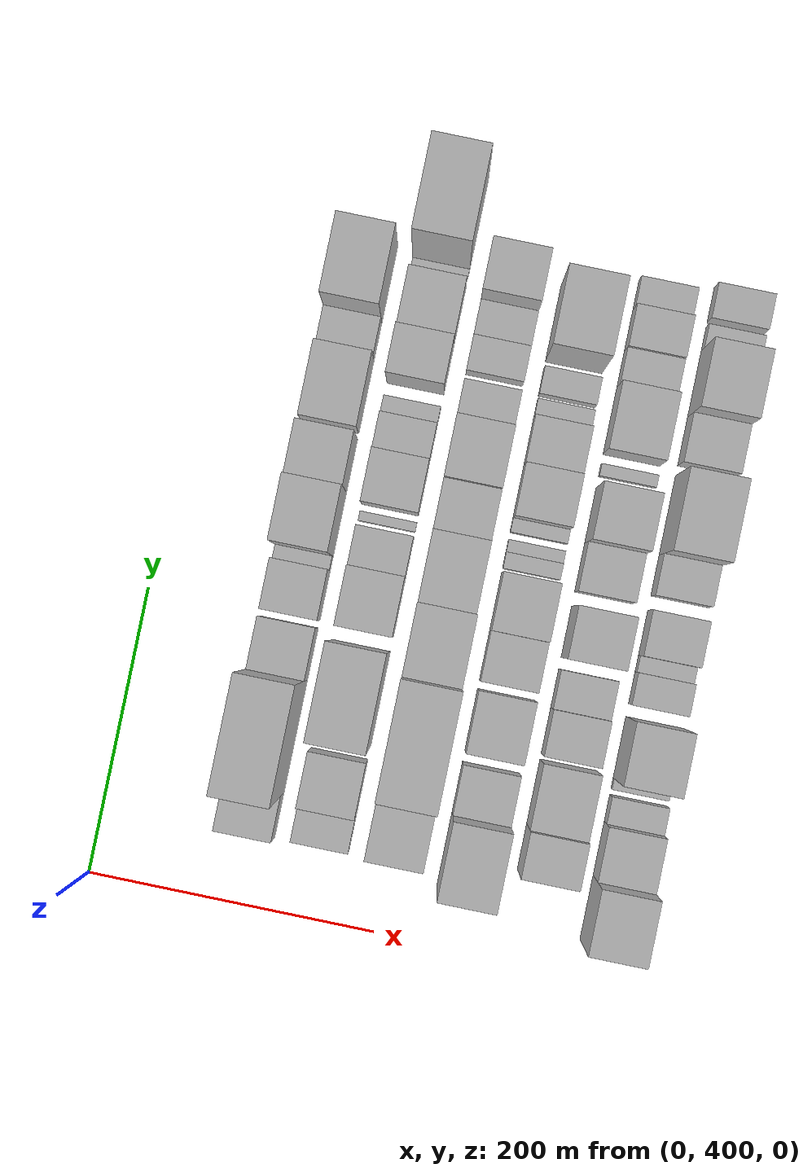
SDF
<sdf version="1.6">
 <world name="default">
  <model name="building_37">
   <static>1</static>
   <pose>100.0000 465.3264 0 0.000000 0.000000 0.000000</pose>
   <link name="link">
    <pose>0 0 30.00 0 0 0</pose>
    <collision name="collision"><geometry><box><size>40.0000 31.7944 60.0000</size></box></geometry></collision>
    <visual name="visual">
     <cast_shadows>0</cast_shadows>
     <geometry><box><size>40.0000 31.7944 60.0000</size></box></geometry>
     <material>
      <script>
       <uri>model://HANNAS_wall/materials/scripts</uri>
       <uri>model://HANNAS_wall/materials/textures</uri>
       <name>vrc/HANNAS_wall</name>
      </script>
     </material>
    </visual>
   </link>
  </model>
  <model name="building_38">
   <static>1</static>
   <pose>100.0000 520.8142 0 0.000000 0.000000 0.000000</pose>
   <link name="link">
    <pose>0 0 108.00 0 0 0</pose>
    <collision name="collision"><geometry><box><size>40.0000 79.1813 216.0000</size></box></geometry></collision>
    <visual name="visual">
     <cast_shadows>0</cast_shadows>
     <geometry><box><size>40.0000 79.1813 216.0000</size></box></geometry>
     <material>
      <script>
       <uri>model://HANNAS_wall/materials/scripts</uri>
       <uri>model://HANNAS_wall/materials/textures</uri>
       <name>vrc/HANNAS_wall</name>
      </script>
     </material>
    </visual>
   </link>
  </model>
  <model name="building_39">
   <static>1</static>
   <pose>100.0000 578.6875 0 0.000000 0.000000 0.000000</pose>
   <link name="link">
    <pose>0 0 33.00 0 0 0</pose>
    <collision name="collision"><geometry><box><size>40.0000 36.5652 66.0000</size></box></geometry></collision>
    <visual name="visual">
     <cast_shadows>0</cast_shadows>
     <geometry><box><size>40.0000 36.5652 66.0000</size></box></geometry>
     <material>
      <script>
       <uri>model://HANNAS_wall/materials/scripts</uri>
       <uri>model://HANNAS_wall/materials/textures</uri>
       <name>vrc/HANNAS_wall</name>
      </script>
     </material>
    </visual>
   </link>
  </model>
  <model name="building_40">
   <static>1</static>
   <pose>100.0000 619.5730 0 0.000000 0.000000 0.000000</pose>
   <link name="link">
    <pose>0 0 31.50 0 0 0</pose>
    <collision name="collision"><geometry><box><size>40.0000 35.2060 63.0000</size></box></geometry></collision>
    <visual name="visual">
     <cast_shadows>0</cast_shadows>
     <geometry><box><size>40.0000 35.2060 63.0000</size></box></geometry>
     <material>
      <script>
       <uri>model://HANNAS_wall/materials/scripts</uri>
       <uri>model://HANNAS_wall/materials/textures</uri>
       <name>vrc/HANNAS_wall</name>
      </script>
     </material>
    </visual>
   </link>
  </model>
  <model name="building_41">
   <static>1</static>
   <pose>100.0000 642.1893 0 0.000000 0.000000 0.000000</pose>
   <link name="link">
    <pose>0 0 12.00 0 0 0</pose>
    <collision name="collision"><geometry><box><size>40.0000 10.0265 24.0000</size></box></geometry></collision>
    <visual name="visual">
     <cast_shadows>0</cast_shadows>
     <geometry><box><size>40.0000 10.0265 24.0000</size></box></geometry>
     <material>
      <script>
       <uri>model://HANNAS_wall/materials/scripts</uri>
       <uri>model://HANNAS_wall/materials/textures</uri>
       <name>vrc/HANNAS_wall</name>
      </script>
     </material>
    </visual>
   </link>
  </model>
  <model name="building_42">
   <static>1</static>
   <pose>100.0000 669.8225 0 0.000000 0.000000 0.000000</pose>
   <link name="link">
    <pose>0 0 67.50 0 0 0</pose>
    <collision name="collision"><geometry><box><size>40.0000 45.2399 135.0000</size></box></geometry></collision>
    <visual name="visual">
     <cast_shadows>0</cast_shadows>
     <geometry><box><size>40.0000 45.2399 135.0000</size></box></geometry>
     <material>
      <script>
       <uri>model://HANNAS_wall/materials/scripts</uri>
       <uri>model://HANNAS_wall/materials/textures</uri>
       <name>vrc/HANNAS_wall</name>
      </script>
     </material>
    </visual>
   </link>
  </model>
  <model name="building_43">
   <static>1</static>
   <pose>100.0000 711.1191 0 0.000000 0.000000 0.000000</pose>
   <link name="link">
    <pose>0 0 57.00 0 0 0</pose>
    <collision name="collision"><geometry><box><size>40.0000 37.3533 114.0000</size></box></geometry></collision>
    <visual name="visual">
     <cast_shadows>0</cast_shadows>
     <geometry><box><size>40.0000 37.3533 114.0000</size></box></geometry>
     <material>
      <script>
       <uri>model://HANNAS_wall/materials/scripts</uri>
       <uri>model://HANNAS_wall/materials/textures</uri>
       <name>vrc/HANNAS_wall</name>
      </script>
     </material>
    </visual>
   </link>
  </model>
  <model name="building_44">
   <static>1</static>
   <pose>100.0000 759.7154 0 0.000000 0.000000 0.000000</pose>
   <link name="link">
    <pose>0 0 43.50 0 0 0</pose>
    <collision name="collision"><geometry><box><size>40.0000 51.8393 87.0000</size></box></geometry></collision>
    <visual name="visual">
     <cast_shadows>0</cast_shadows>
     <geometry><box><size>40.0000 51.8393 87.0000</size></box></geometry>
     <material>
      <script>
       <uri>model://HANNAS_wall/materials/scripts</uri>
       <uri>model://HANNAS_wall/materials/textures</uri>
       <name>vrc/HANNAS_wall</name>
      </script>
     </material>
    </visual>
   </link>
  </model>
  <model name="building_45">
   <static>1</static>
   <pose>100.0000 798.9057 0 0.000000 0.000000 0.000000</pose>
   <link name="link">
    <pose>0 0 24.00 0 0 0</pose>
    <collision name="collision"><geometry><box><size>40.0000 26.5413 48.0000</size></box></geometry></collision>
    <visual name="visual">
     <cast_shadows>0</cast_shadows>
     <geometry><box><size>40.0000 26.5413 48.0000</size></box></geometry>
     <material>
      <script>
       <uri>model://HANNAS_wall/materials/scripts</uri>
       <uri>model://HANNAS_wall/materials/textures</uri>
       <name>vrc/HANNAS_wall</name>
      </script>
     </material>
    </visual>
   </link>
  </model>
  <model name="building_46">
   <static>1</static>
   <pose>100.0000 839.1710 0 0.000000 0.000000 0.000000</pose>
   <link name="link">
    <pose>0 0 69.00 0 0 0</pose>
    <collision name="collision"><geometry><box><size>40.0000 53.9894 138.0000</size></box></geometry></collision>
    <visual name="visual">
     <cast_shadows>0</cast_shadows>
     <geometry><box><size>40.0000 53.9894 138.0000</size></box></geometry>
     <material>
      <script>
       <uri>model://HANNAS_wall/materials/scripts</uri>
       <uri>model://HANNAS_wall/materials/textures</uri>
       <name>vrc/HANNAS_wall</name>
      </script>
     </material>
    </visual>
   </link>
  </model>
  <model name="building_82">
   <static>1</static>
   <pose>152.0000 463.8334 0 0.000000 0.000000 0.000000</pose>
   <link name="link">
    <pose>0 0 21.00 0 0 0</pose>
    <collision name="collision"><geometry><box><size>40.0000 25.0306 42.0000</size></box></geometry></collision>
    <visual name="visual">
     <cast_shadows>0</cast_shadows>
     <geometry><box><size>40.0000 25.0306 42.0000</size></box></geometry>
     <material>
      <script>
       <uri>model://HANNAS_wall/materials/scripts</uri>
       <uri>model://HANNAS_wall/materials/textures</uri>
       <name>vrc/HANNAS_wall</name>
      </script>
     </material>
    </visual>
   </link>
  </model>
  <model name="building_83">
   <static>1</static>
   <pose>152.0000 495.8571 0 0.000000 0.000000 0.000000</pose>
   <link name="link">
    <pose>0 0 37.50 0 0 0</pose>
    <collision name="collision"><geometry><box><size>40.0000 39.0169 75.0000</size></box></geometry></collision>
    <visual name="visual">
     <cast_shadows>0</cast_shadows>
     <geometry><box><size>40.0000 39.0169 75.0000</size></box></geometry>
     <material>
      <script>
       <uri>model://HANNAS_wall/materials/scripts</uri>
       <uri>model://HANNAS_wall/materials/textures</uri>
       <name>vrc/HANNAS_wall</name>
      </script>
     </material>
    </visual>
   </link>
  </model>
  <model name="building_84">
   <static>1</static>
   <pose>152.0000 558.2734 0 0.000000 0.000000 0.000000</pose>
   <link name="link">
    <pose>0 0 99.00 0 0 0</pose>
    <collision name="collision"><geometry><box><size>40.0000 65.8157 198.0000</size></box></geometry></collision>
    <visual name="visual">
     <cast_shadows>0</cast_shadows>
     <geometry><box><size>40.0000 65.8157 198.0000</size></box></geometry>
     <material>
      <script>
       <uri>model://HANNAS_wall/materials/scripts</uri>
       <uri>model://HANNAS_wall/materials/textures</uri>
       <name>vrc/HANNAS_wall</name>
      </script>
     </material>
    </visual>
   </link>
  </model>
  <model name="building_85">
   <static>1</static>
   <pose>152.0000 622.0047 0 0.000000 0.000000 0.000000</pose>
   <link name="link">
    <pose>0 0 37.50 0 0 0</pose>
    <collision name="collision"><geometry><box><size>40.0000 41.6470 75.0000</size></box></geometry></collision>
    <visual name="visual">
     <cast_shadows>0</cast_shadows>
     <geometry><box><size>40.0000 41.6470 75.0000</size></box></geometry>
     <material>
      <script>
       <uri>model://HANNAS_wall/materials/scripts</uri>
       <uri>model://HANNAS_wall/materials/textures</uri>
       <name>vrc/HANNAS_wall</name>
      </script>
     </material>
    </visual>
   </link>
  </model>
  <model name="building_86">
   <static>1</static>
   <pose>152.0000 656.8370 0 0.000000 0.000000 0.000000</pose>
   <link name="link">
    <pose>0 0 27.00 0 0 0</pose>
    <collision name="collision"><geometry><box><size>40.0000 28.0175 54.0000</size></box></geometry></collision>
    <visual name="visual">
     <cast_shadows>0</cast_shadows>
     <geometry><box><size>40.0000 28.0175 54.0000</size></box></geometry>
     <material>
      <script>
       <uri>model://HANNAS_wall/materials/scripts</uri>
       <uri>model://HANNAS_wall/materials/textures</uri>
       <name>vrc/HANNAS_wall</name>
      </script>
     </material>
    </visual>
   </link>
  </model>
  <model name="building_87">
   <static>1</static>
   <pose>152.0000 678.2125 0 0.000000 0.000000 0.000000</pose>
   <link name="link">
    <pose>0 0 7.50 0 0 0</pose>
    <collision name="collision"><geometry><box><size>40.0000 6.7335 15.0000</size></box></geometry></collision>
    <visual name="visual">
     <cast_shadows>0</cast_shadows>
     <geometry><box><size>40.0000 6.7335 15.0000</size></box></geometry>
     <material>
      <script>
       <uri>model://HANNAS_wall/materials/scripts</uri>
       <uri>model://HANNAS_wall/materials/textures</uri>
       <name>vrc/HANNAS_wall</name>
      </script>
     </material>
    </visual>
   </link>
  </model>
  <model name="building_88">
   <static>1</static>
   <pose>152.0000 705.2136 0 0.000000 0.000000 0.000000</pose>
   <link name="link">
    <pose>0 0 33.00 0 0 0</pose>
    <collision name="collision"><geometry><box><size>40.0000 37.2688 66.0000</size></box></geometry></collision>
    <visual name="visual">
     <cast_shadows>0</cast_shadows>
     <geometry><box><size>40.0000 37.2688 66.0000</size></box></geometry>
     <material>
      <script>
       <uri>model://HANNAS_wall/materials/scripts</uri>
       <uri>model://HANNAS_wall/materials/textures</uri>
       <name>vrc/HANNAS_wall</name>
      </script>
     </material>
    </visual>
   </link>
  </model>
  <model name="building_89">
   <static>1</static>
   <pose>152.0000 736.6379 0 0.000000 0.000000 0.000000</pose>
   <link name="link">
    <pose>0 0 25.50 0 0 0</pose>
    <collision name="collision"><geometry><box><size>40.0000 25.5797 51.0000</size></box></geometry></collision>
    <visual name="visual">
     <cast_shadows>0</cast_shadows>
     <geometry><box><size>40.0000 25.5797 51.0000</size></box></geometry>
     <material>
      <script>
       <uri>model://HANNAS_wall/materials/scripts</uri>
       <uri>model://HANNAS_wall/materials/textures</uri>
       <name>vrc/HANNAS_wall</name>
      </script>
     </material>
    </visual>
   </link>
  </model>
  <model name="building_90">
   <static>1</static>
   <pose>152.0000 755.7838 0 0.000000 0.000000 0.000000</pose>
   <link name="link">
    <pose>0 0 13.50 0 0 0</pose>
    <collision name="collision"><geometry><box><size>40.0000 12.7121 27.0000</size></box></geometry></collision>
    <visual name="visual">
     <cast_shadows>0</cast_shadows>
     <geometry><box><size>40.0000 12.7121 27.0000</size></box></geometry>
     <material>
      <script>
       <uri>model://HANNAS_wall/materials/scripts</uri>
       <uri>model://HANNAS_wall/materials/textures</uri>
       <name>vrc/HANNAS_wall</name>
      </script>
     </material>
    </visual>
   </link>
  </model>
  <model name="building_91">
   <static>1</static>
   <pose>152.0000 789.0494 0 0.000000 0.000000 0.000000</pose>
   <link name="link">
    <pose>0 0 52.50 0 0 0</pose>
    <collision name="collision"><geometry><box><size>40.0000 33.8191 105.0000</size></box></geometry></collision>
    <visual name="visual">
     <cast_shadows>0</cast_shadows>
     <geometry><box><size>40.0000 33.8191 105.0000</size></box></geometry>
     <material>
      <script>
       <uri>model://HANNAS_wall/materials/scripts</uri>
       <uri>model://HANNAS_wall/materials/textures</uri>
       <name>vrc/HANNAS_wall</name>
      </script>
     </material>
    </visual>
   </link>
  </model>
  <model name="building_92">
   <static>1</static>
   <pose>152.0000 826.7381 0 0.000000 0.000000 0.000000</pose>
   <link name="link">
    <pose>0 0 40.50 0 0 0</pose>
    <collision name="collision"><geometry><box><size>40.0000 41.5583 81.0000</size></box></geometry></collision>
    <visual name="visual">
     <cast_shadows>0</cast_shadows>
     <geometry><box><size>40.0000 41.5583 81.0000</size></box></geometry>
     <material>
      <script>
       <uri>model://HANNAS_wall/materials/scripts</uri>
       <uri>model://HANNAS_wall/materials/textures</uri>
       <name>vrc/HANNAS_wall</name>
      </script>
     </material>
    </visual>
   </link>
  </model>
  <model name="building_93">
   <static>1</static>
   <pose>152.0000 856.5205 0 0.000000 0.000000 0.000000</pose>
   <link name="link">
    <pose>0 0 7.50 0 0 0</pose>
    <collision name="collision"><geometry><box><size>40.0000 6.0066 15.0000</size></box></geometry></collision>
    <visual name="visual">
     <cast_shadows>0</cast_shadows>
     <geometry><box><size>40.0000 6.0066 15.0000</size></box></geometry>
     <material>
      <script>
       <uri>model://HANNAS_wall/materials/scripts</uri>
       <uri>model://HANNAS_wall/materials/textures</uri>
       <name>vrc/HANNAS_wall</name>
      </script>
     </material>
    </visual>
   </link>
  </model>
  <model name="building_94">
   <static>1</static>
   <pose>152.0000 891.4719 0 0.000000 0.000000 0.000000</pose>
   <link name="link">
    <pose>0 0 91.50 0 0 0</pose>
    <collision name="collision"><geometry><box><size>40.0000 63.8961 183.0000</size></box></geometry></collision>
    <visual name="visual">
     <cast_shadows>0</cast_shadows>
     <geometry><box><size>40.0000 63.8961 183.0000</size></box></geometry>
     <material>
      <script>
       <uri>model://HANNAS_wall/materials/scripts</uri>
       <uri>model://HANNAS_wall/materials/textures</uri>
       <name>vrc/HANNAS_wall</name>
      </script>
     </material>
    </visual>
   </link>
  </model>
  <model name="building_136">
   <static>1</static>
   <pose>204.0000 473.1175 0 0.000000 0.000000 0.000000</pose>
   <link name="link">
    <pose>0 0 51.00 0 0 0</pose>
    <collision name="collision"><geometry><box><size>40.0000 40.0647 102.0000</size></box></geometry></collision>
    <visual name="visual">
     <cast_shadows>0</cast_shadows>
     <geometry><box><size>40.0000 40.0647 102.0000</size></box></geometry>
     <material>
      <script>
       <uri>model://HANNAS_wall/materials/scripts</uri>
       <uri>model://HANNAS_wall/materials/textures</uri>
       <name>vrc/HANNAS_wall</name>
      </script>
     </material>
    </visual>
   </link>
  </model>
  <model name="building_137">
   <static>1</static>
   <pose>204.0000 538.0201 0 0.000000 0.000000 0.000000</pose>
   <link name="link">
    <pose>0 0 111.00 0 0 0</pose>
    <collision name="collision"><geometry><box><size>40.0000 79.7405 222.0000</size></box></geometry></collision>
    <visual name="visual">
     <cast_shadows>0</cast_shadows>
     <geometry><box><size>40.0000 79.7405 222.0000</size></box></geometry>
     <material>
      <script>
       <uri>model://HANNAS_wall/materials/scripts</uri>
       <uri>model://HANNAS_wall/materials/textures</uri>
       <name>vrc/HANNAS_wall</name>
      </script>
     </material>
    </visual>
   </link>
  </model>
  <model name="building_138">
   <static>1</static>
   <pose>204.0000 602.6849 0 0.000000 0.000000 0.000000</pose>
   <link name="link">
    <pose>0 0 75.00 0 0 0</pose>
    <collision name="collision"><geometry><box><size>40.0000 49.5892 150.0000</size></box></geometry></collision>
    <visual name="visual">
     <cast_shadows>0</cast_shadows>
     <geometry><box><size>40.0000 49.5892 150.0000</size></box></geometry>
     <material>
      <script>
       <uri>model://HANNAS_wall/materials/scripts</uri>
       <uri>model://HANNAS_wall/materials/textures</uri>
       <name>vrc/HANNAS_wall</name>
      </script>
     </material>
    </visual>
   </link>
  </model>
  <model name="building_139">
   <static>1</static>
   <pose>204.0000 652.6378 0 0.000000 0.000000 0.000000</pose>
   <link name="link">
    <pose>0 0 45.00 0 0 0</pose>
    <collision name="collision"><geometry><box><size>40.0000 50.3165 90.0000</size></box></geometry></collision>
    <visual name="visual">
     <cast_shadows>0</cast_shadows>
     <geometry><box><size>40.0000 50.3165 90.0000</size></box></geometry>
     <material>
      <script>
       <uri>model://HANNAS_wall/materials/scripts</uri>
       <uri>model://HANNAS_wall/materials/textures</uri>
       <name>vrc/HANNAS_wall</name>
      </script>
     </material>
    </visual>
   </link>
  </model>
  <model name="building_140">
   <static>1</static>
   <pose>204.0000 695.7059 0 0.000000 0.000000 0.000000</pose>
   <link name="link">
    <pose>0 0 34.50 0 0 0</pose>
    <collision name="collision"><geometry><box><size>40.0000 35.8197 69.0000</size></box></geometry></collision>
    <visual name="visual">
     <cast_shadows>0</cast_shadows>
     <geometry><box><size>40.0000 35.8197 69.0000</size></box></geometry>
     <material>
      <script>
       <uri>model://HANNAS_wall/materials/scripts</uri>
       <uri>model://HANNAS_wall/materials/textures</uri>
       <name>vrc/HANNAS_wall</name>
      </script>
     </material>
    </visual>
   </link>
  </model>
  <model name="building_141">
   <static>1</static>
   <pose>204.0000 735.2350 0 0.000000 0.000000 0.000000</pose>
   <link name="link">
    <pose>0 0 42.00 0 0 0</pose>
    <collision name="collision"><geometry><box><size>40.0000 43.2385 84.0000</size></box></geometry></collision>
    <visual name="visual">
     <cast_shadows>0</cast_shadows>
     <geometry><box><size>40.0000 43.2385 84.0000</size></box></geometry>
     <material>
      <script>
       <uri>model://HANNAS_wall/materials/scripts</uri>
       <uri>model://HANNAS_wall/materials/textures</uri>
       <name>vrc/HANNAS_wall</name>
      </script>
     </material>
    </visual>
   </link>
  </model>
  <model name="building_142">
   <static>1</static>
   <pose>204.0000 769.8912 0 0.000000 0.000000 0.000000</pose>
   <link name="link">
    <pose>0 0 24.00 0 0 0</pose>
    <collision name="collision"><geometry><box><size>40.0000 26.0739 48.0000</size></box></geometry></collision>
    <visual name="visual">
     <cast_shadows>0</cast_shadows>
     <geometry><box><size>40.0000 26.0739 48.0000</size></box></geometry>
     <material>
      <script>
       <uri>model://HANNAS_wall/materials/scripts</uri>
       <uri>model://HANNAS_wall/materials/textures</uri>
       <name>vrc/HANNAS_wall</name>
      </script>
     </material>
    </visual>
   </link>
  </model>
  <model name="building_143">
   <static>1</static>
   <pose>204.0000 801.3986 0 0.000000 0.000000 0.000000</pose>
   <link name="link">
    <pose>0 0 22.50 0 0 0</pose>
    <collision name="collision"><geometry><box><size>40.0000 24.9409 45.0000</size></box></geometry></collision>
    <visual name="visual">
     <cast_shadows>0</cast_shadows>
     <geometry><box><size>40.0000 24.9409 45.0000</size></box></geometry>
     <material>
      <script>
       <uri>model://HANNAS_wall/materials/scripts</uri>
       <uri>model://HANNAS_wall/materials/textures</uri>
       <name>vrc/HANNAS_wall</name>
      </script>
     </material>
    </visual>
   </link>
  </model>
  <model name="building_144">
   <static>1</static>
   <pose>204.0000 826.1705 0 0.000000 0.000000 0.000000</pose>
   <link name="link">
    <pose>0 0 21.00 0 0 0</pose>
    <collision name="collision"><geometry><box><size>40.0000 24.6029 42.0000</size></box></geometry></collision>
    <visual name="visual">
     <cast_shadows>0</cast_shadows>
     <geometry><box><size>40.0000 24.6029 42.0000</size></box></geometry>
     <material>
      <script>
       <uri>model://HANNAS_wall/materials/scripts</uri>
       <uri>model://HANNAS_wall/materials/textures</uri>
       <name>vrc/HANNAS_wall</name>
      </script>
     </material>
    </visual>
   </link>
  </model>
  <model name="building_145">
   <static>1</static>
   <pose>204.0000 856.3616 0 0.000000 0.000000 0.000000</pose>
   <link name="link">
    <pose>0 0 55.50 0 0 0</pose>
    <collision name="collision"><geometry><box><size>40.0000 35.7794 111.0000</size></box></geometry></collision>
    <visual name="visual">
     <cast_shadows>0</cast_shadows>
     <geometry><box><size>40.0000 35.7794 111.0000</size></box></geometry>
     <material>
      <script>
       <uri>model://HANNAS_wall/materials/scripts</uri>
       <uri>model://HANNAS_wall/materials/textures</uri>
       <name>vrc/HANNAS_wall</name>
      </script>
     </material>
    </visual>
   </link>
  </model>
  <model name="building_180">
   <static>1</static>
   <pose>256.0000 465.7225 0 0.000000 0.000000 0.000000</pose>
   <link name="link">
    <pose>0 0 67.50 0 0 0</pose>
    <collision name="collision"><geometry><box><size>40.0000 53.6320 135.0000</size></box></geometry></collision>
    <visual name="visual">
     <cast_shadows>0</cast_shadows>
     <geometry><box><size>40.0000 53.6320 135.0000</size></box></geometry>
     <material>
      <script>
       <uri>model://HANNAS_wall/materials/scripts</uri>
       <uri>model://HANNAS_wall/materials/textures</uri>
       <name>vrc/HANNAS_wall</name>
      </script>
     </material>
    </visual>
   </link>
  </model>
  <model name="building_181">
   <static>1</static>
   <pose>256.0000 509.8929 0 0.000000 0.000000 0.000000</pose>
   <link name="link">
    <pose>0 0 31.50 0 0 0</pose>
    <collision name="collision"><geometry><box><size>40.0000 34.7088 63.0000</size></box></geometry></collision>
    <visual name="visual">
     <cast_shadows>0</cast_shadows>
     <geometry><box><size>40.0000 34.7088 63.0000</size></box></geometry>
     <material>
      <script>
       <uri>model://HANNAS_wall/materials/scripts</uri>
       <uri>model://HANNAS_wall/materials/textures</uri>
       <name>vrc/HANNAS_wall</name>
      </script>
     </material>
    </visual>
   </link>
  </model>
  <model name="building_182">
   <static>1</static>
   <pose>256.0000 556.8422 0 0.000000 0.000000 0.000000</pose>
   <link name="link">
    <pose>0 0 37.50 0 0 0</pose>
    <collision name="collision"><geometry><box><size>40.0000 43.1899 75.0000</size></box></geometry></collision>
    <visual name="visual">
     <cast_shadows>0</cast_shadows>
     <geometry><box><size>40.0000 43.1899 75.0000</size></box></geometry>
     <material>
      <script>
       <uri>model://HANNAS_wall/materials/scripts</uri>
       <uri>model://HANNAS_wall/materials/textures</uri>
       <name>vrc/HANNAS_wall</name>
      </script>
     </material>
    </visual>
   </link>
  </model>
  <model name="building_183">
   <static>1</static>
   <pose>256.0000 601.8945 0 0.000000 0.000000 0.000000</pose>
   <link name="link">
    <pose>0 0 31.50 0 0 0</pose>
    <collision name="collision"><geometry><box><size>40.0000 34.9147 63.0000</size></box></geometry></collision>
    <visual name="visual">
     <cast_shadows>0</cast_shadows>
     <geometry><box><size>40.0000 34.9147 63.0000</size></box></geometry>
     <material>
      <script>
       <uri>model://HANNAS_wall/materials/scripts</uri>
       <uri>model://HANNAS_wall/materials/textures</uri>
       <name>vrc/HANNAS_wall</name>
      </script>
     </material>
    </visual>
   </link>
  </model>
  <model name="building_184">
   <static>1</static>
   <pose>256.0000 639.5290 0 0.000000 0.000000 0.000000</pose>
   <link name="link">
    <pose>0 0 39.00 0 0 0</pose>
    <collision name="collision"><geometry><box><size>40.0000 40.3544 78.0000</size></box></geometry></collision>
    <visual name="visual">
     <cast_shadows>0</cast_shadows>
     <geometry><box><size>40.0000 40.3544 78.0000</size></box></geometry>
     <material>
      <script>
       <uri>model://HANNAS_wall/materials/scripts</uri>
       <uri>model://HANNAS_wall/materials/textures</uri>
       <name>vrc/HANNAS_wall</name>
      </script>
     </material>
    </visual>
   </link>
  </model>
  <model name="building_185">
   <static>1</static>
   <pose>256.0000 668.4818 0 0.000000 0.000000 0.000000</pose>
   <link name="link">
    <pose>0 0 12.00 0 0 0</pose>
    <collision name="collision"><geometry><box><size>40.0000 11.5511 24.0000</size></box></geometry></collision>
    <visual name="visual">
     <cast_shadows>0</cast_shadows>
     <geometry><box><size>40.0000 11.5511 24.0000</size></box></geometry>
     <material>
      <script>
       <uri>model://HANNAS_wall/materials/scripts</uri>
       <uri>model://HANNAS_wall/materials/textures</uri>
       <name>vrc/HANNAS_wall</name>
      </script>
     </material>
    </visual>
   </link>
  </model>
  <model name="building_186">
   <static>1</static>
   <pose>256.0000 678.6767 0 0.000000 0.000000 0.000000</pose>
   <link name="link">
    <pose>0 0 9.00 0 0 0</pose>
    <collision name="collision"><geometry><box><size>40.0000 8.8387 18.0000</size></box></geometry></collision>
    <visual name="visual">
     <cast_shadows>0</cast_shadows>
     <geometry><box><size>40.0000 8.8387 18.0000</size></box></geometry>
     <material>
      <script>
       <uri>model://HANNAS_wall/materials/scripts</uri>
       <uri>model://HANNAS_wall/materials/textures</uri>
       <name>vrc/HANNAS_wall</name>
      </script>
     </material>
    </visual>
   </link>
  </model>
  <model name="building_187">
   <static>1</static>
   <pose>256.0000 693.1140 0 0.000000 0.000000 0.000000</pose>
   <link name="link">
    <pose>0 0 10.50 0 0 0</pose>
    <collision name="collision"><geometry><box><size>40.0000 10.0360 21.0000</size></box></geometry></collision>
    <visual name="visual">
     <cast_shadows>0</cast_shadows>
     <geometry><box><size>40.0000 10.0360 21.0000</size></box></geometry>
     <material>
      <script>
       <uri>model://HANNAS_wall/materials/scripts</uri>
       <uri>model://HANNAS_wall/materials/textures</uri>
       <name>vrc/HANNAS_wall</name>
      </script>
     </material>
    </visual>
   </link>
  </model>
  <model name="building_188">
   <static>1</static>
   <pose>256.0000 716.5580 0 0.000000 0.000000 0.000000</pose>
   <link name="link">
    <pose>0 0 34.50 0 0 0</pose>
    <collision name="collision"><geometry><box><size>40.0000 36.8519 69.0000</size></box></geometry></collision>
    <visual name="visual">
     <cast_shadows>0</cast_shadows>
     <geometry><box><size>40.0000 36.8519 69.0000</size></box></geometry>
     <material>
      <script>
       <uri>model://HANNAS_wall/materials/scripts</uri>
       <uri>model://HANNAS_wall/materials/textures</uri>
       <name>vrc/HANNAS_wall</name>
      </script>
     </material>
    </visual>
   </link>
  </model>
  <model name="building_189">
   <static>1</static>
   <pose>256.0000 751.6700 0 0.000000 0.000000 0.000000</pose>
   <link name="link">
    <pose>0 0 28.50 0 0 0</pose>
    <collision name="collision"><geometry><box><size>40.0000 33.3720 57.0000</size></box></geometry></collision>
    <visual name="visual">
     <cast_shadows>0</cast_shadows>
     <geometry><box><size>40.0000 33.3720 57.0000</size></box></geometry>
     <material>
      <script>
       <uri>model://HANNAS_wall/materials/scripts</uri>
       <uri>model://HANNAS_wall/materials/textures</uri>
       <name>vrc/HANNAS_wall</name>
      </script>
     </material>
    </visual>
   </link>
  </model>
  <model name="building_190">
   <static>1</static>
   <pose>256.0000 774.8761 0 0.000000 0.000000 0.000000</pose>
   <link name="link">
    <pose>0 0 13.50 0 0 0</pose>
    <collision name="collision"><geometry><box><size>40.0000 13.0401 27.0000</size></box></geometry></collision>
    <visual name="visual">
     <cast_shadows>0</cast_shadows>
     <geometry><box><size>40.0000 13.0401 27.0000</size></box></geometry>
     <material>
      <script>
       <uri>model://HANNAS_wall/materials/scripts</uri>
       <uri>model://HANNAS_wall/materials/textures</uri>
       <name>vrc/HANNAS_wall</name>
      </script>
     </material>
    </visual>
   </link>
  </model>
  <model name="building_191">
   <static>1</static>
   <pose>256.0000 794.0539 0 0.000000 0.000000 0.000000</pose>
   <link name="link">
    <pose>0 0 16.50 0 0 0</pose>
    <collision name="collision"><geometry><box><size>40.0000 19.3156 33.0000</size></box></geometry></collision>
    <visual name="visual">
     <cast_shadows>0</cast_shadows>
     <geometry><box><size>40.0000 19.3156 33.0000</size></box></geometry>
     <material>
      <script>
       <uri>model://HANNAS_wall/materials/scripts</uri>
       <uri>model://HANNAS_wall/materials/textures</uri>
       <name>vrc/HANNAS_wall</name>
      </script>
     </material>
    </visual>
   </link>
  </model>
  <model name="building_192">
   <static>1</static>
   <pose>256.0000 835.2812 0 0.000000 0.000000 0.000000</pose>
   <link name="link">
    <pose>0 0 76.50 0 0 0</pose>
    <collision name="collision"><geometry><box><size>40.0000 53.1390 153.0000</size></box></geometry></collision>
    <visual name="visual">
     <cast_shadows>0</cast_shadows>
     <geometry><box><size>40.0000 53.1390 153.0000</size></box></geometry>
     <material>
      <script>
       <uri>model://HANNAS_wall/materials/scripts</uri>
       <uri>model://HANNAS_wall/materials/textures</uri>
       <name>vrc/HANNAS_wall</name>
      </script>
     </material>
    </visual>
   </link>
  </model>
  <model name="building_227">
   <static>1</static>
   <pose>308.0000 478.3306 0 0.000000 0.000000 0.000000</pose>
   <link name="link">
    <pose>0 0 49.50 0 0 0</pose>
    <collision name="collision"><geometry><box><size>40.0000 31.8726 99.0000</size></box></geometry></collision>
    <visual name="visual">
     <cast_shadows>0</cast_shadows>
     <geometry><box><size>40.0000 31.8726 99.0000</size></box></geometry>
     <material>
      <script>
       <uri>model://HANNAS_wall/materials/scripts</uri>
       <uri>model://HANNAS_wall/materials/textures</uri>
       <name>vrc/HANNAS_wall</name>
      </script>
     </material>
    </visual>
   </link>
  </model>
  <model name="building_228">
   <static>1</static>
   <pose>308.0000 516.9680 0 0.000000 0.000000 0.000000</pose>
   <link name="link">
    <pose>0 0 42.00 0 0 0</pose>
    <collision name="collision"><geometry><box><size>40.0000 45.4022 84.0000</size></box></geometry></collision>
    <visual name="visual">
     <cast_shadows>0</cast_shadows>
     <geometry><box><size>40.0000 45.4022 84.0000</size></box></geometry>
     <material>
      <script>
       <uri>model://HANNAS_wall/materials/scripts</uri>
       <uri>model://HANNAS_wall/materials/textures</uri>
       <name>vrc/HANNAS_wall</name>
      </script>
     </material>
    </visual>
   </link>
  </model>
  <model name="building_229">
   <static>1</static>
   <pose>308.0000 559.8128 0 0.000000 0.000000 0.000000</pose>
   <link name="link">
    <pose>0 0 31.50 0 0 0</pose>
    <collision name="collision"><geometry><box><size>40.0000 32.2874 63.0000</size></box></geometry></collision>
    <visual name="visual">
     <cast_shadows>0</cast_shadows>
     <geometry><box><size>40.0000 32.2874 63.0000</size></box></geometry>
     <material>
      <script>
       <uri>model://HANNAS_wall/materials/scripts</uri>
       <uri>model://HANNAS_wall/materials/textures</uri>
       <name>vrc/HANNAS_wall</name>
      </script>
     </material>
    </visual>
   </link>
  </model>
  <model name="building_230">
   <static>1</static>
   <pose>308.0000 589.5141 0 0.000000 0.000000 0.000000</pose>
   <link name="link">
    <pose>0 0 25.50 0 0 0</pose>
    <collision name="collision"><geometry><box><size>40.0000 27.1152 51.0000</size></box></geometry></collision>
    <visual name="visual">
     <cast_shadows>0</cast_shadows>
     <geometry><box><size>40.0000 27.1152 51.0000</size></box></geometry>
     <material>
      <script>
       <uri>model://HANNAS_wall/materials/scripts</uri>
       <uri>model://HANNAS_wall/materials/textures</uri>
       <name>vrc/HANNAS_wall</name>
      </script>
     </material>
    </visual>
   </link>
  </model>
  <model name="building_231">
   <static>1</static>
   <pose>308.0000 629.1372 0 0.000000 0.000000 0.000000</pose>
   <link name="link">
    <pose>0 0 60.00 0 0 0</pose>
    <collision name="collision"><geometry><box><size>40.0000 36.1309 120.0000</size></box></geometry></collision>
    <visual name="visual">
     <cast_shadows>0</cast_shadows>
     <geometry><box><size>40.0000 36.1309 120.0000</size></box></geometry>
     <material>
      <script>
       <uri>model://HANNAS_wall/materials/scripts</uri>
       <uri>model://HANNAS_wall/materials/textures</uri>
       <name>vrc/HANNAS_wall</name>
      </script>
     </material>
    </visual>
   </link>
  </model>
  <model name="building_232">
   <static>1</static>
   <pose>308.0000 674.2612 0 0.000000 0.000000 0.000000</pose>
   <link name="link">
    <pose>0 0 31.50 0 0 0</pose>
    <collision name="collision"><geometry><box><size>40.0000 34.1171 63.0000</size></box></geometry></collision>
    <visual name="visual">
     <cast_shadows>0</cast_shadows>
     <geometry><box><size>40.0000 34.1171 63.0000</size></box></geometry>
     <material>
      <script>
       <uri>model://HANNAS_wall/materials/scripts</uri>
       <uri>model://HANNAS_wall/materials/textures</uri>
       <name>vrc/HANNAS_wall</name>
      </script>
     </material>
    </visual>
   </link>
  </model>
  <model name="building_233">
   <static>1</static>
   <pose>308.0000 710.8750 0 0.000000 0.000000 0.000000</pose>
   <link name="link">
    <pose>0 0 60.00 0 0 0</pose>
    <collision name="collision"><geometry><box><size>40.0000 39.1106 120.0000</size></box></geometry></collision>
    <visual name="visual">
     <cast_shadows>0</cast_shadows>
     <geometry><box><size>40.0000 39.1106 120.0000</size></box></geometry>
     <material>
      <script>
       <uri>model://HANNAS_wall/materials/scripts</uri>
       <uri>model://HANNAS_wall/materials/textures</uri>
       <name>vrc/HANNAS_wall</name>
      </script>
     </material>
    </visual>
   </link>
  </model>
  <model name="building_234">
   <static>1</static>
   <pose>308.0000 742.7696 0 0.000000 0.000000 0.000000</pose>
   <link name="link">
    <pose>0 0 9.00 0 0 0</pose>
    <collision name="collision"><geometry><box><size>40.0000 8.6786 18.0000</size></box></geometry></collision>
    <visual name="visual">
     <cast_shadows>0</cast_shadows>
     <geometry><box><size>40.0000 8.6786 18.0000</size></box></geometry>
     <material>
      <script>
       <uri>model://HANNAS_wall/materials/scripts</uri>
       <uri>model://HANNAS_wall/materials/textures</uri>
       <name>vrc/HANNAS_wall</name>
      </script>
     </material>
    </visual>
   </link>
  </model>
  <model name="building_235">
   <static>1</static>
   <pose>308.0000 777.4933 0 0.000000 0.000000 0.000000</pose>
   <link name="link">
    <pose>0 0 40.50 0 0 0</pose>
    <collision name="collision"><geometry><box><size>40.0000 46.7687 81.0000</size></box></geometry></collision>
    <visual name="visual">
     <cast_shadows>0</cast_shadows>
     <geometry><box><size>40.0000 46.7687 81.0000</size></box></geometry>
     <material>
      <script>
       <uri>model://HANNAS_wall/materials/scripts</uri>
       <uri>model://HANNAS_wall/materials/textures</uri>
       <name>vrc/HANNAS_wall</name>
      </script>
     </material>
    </visual>
   </link>
  </model>
  <model name="building_236">
   <static>1</static>
   <pose>308.0000 813.5544 0 0.000000 0.000000 0.000000</pose>
   <link name="link">
    <pose>0 0 24.00 0 0 0</pose>
    <collision name="collision"><geometry><box><size>40.0000 25.3535 48.0000</size></box></geometry></collision>
    <visual name="visual">
     <cast_shadows>0</cast_shadows>
     <geometry><box><size>40.0000 25.3535 48.0000</size></box></geometry>
     <material>
      <script>
       <uri>model://HANNAS_wall/materials/scripts</uri>
       <uri>model://HANNAS_wall/materials/textures</uri>
       <name>vrc/HANNAS_wall</name>
      </script>
     </material>
    </visual>
   </link>
  </model>
  <model name="building_237">
   <static>1</static>
   <pose>308.0000 840.9035 0 0.000000 0.000000 0.000000</pose>
   <link name="link">
    <pose>0 0 28.50 0 0 0</pose>
    <collision name="collision"><geometry><box><size>40.0000 29.3447 57.0000</size></box></geometry></collision>
    <visual name="visual">
     <cast_shadows>0</cast_shadows>
     <geometry><box><size>40.0000 29.3447 57.0000</size></box></geometry>
     <material>
      <script>
       <uri>model://HANNAS_wall/materials/scripts</uri>
       <uri>model://HANNAS_wall/materials/textures</uri>
       <name>vrc/HANNAS_wall</name>
      </script>
     </material>
    </visual>
   </link>
  </model>
  <model name="building_238">
   <static>1</static>
   <pose>308.0000 866.1840 0 0.000000 0.000000 0.000000</pose>
   <link name="link">
    <pose>0 0 18.00 0 0 0</pose>
    <collision name="collision"><geometry><box><size>40.0000 21.2163 36.0000</size></box></geometry></collision>
    <visual name="visual">
     <cast_shadows>0</cast_shadows>
     <geometry><box><size>40.0000 21.2163 36.0000</size></box></geometry>
     <material>
      <script>
       <uri>model://HANNAS_wall/materials/scripts</uri>
       <uri>model://HANNAS_wall/materials/textures</uri>
       <name>vrc/HANNAS_wall</name>
      </script>
     </material>
    </visual>
   </link>
  </model>
  <model name="building_274">
   <static>1</static>
   <pose>360.0000 446.2600 0 0.000000 0.000000 0.000000</pose>
   <link name="link">
    <pose>0 0 63.00 0 0 0</pose>
    <collision name="collision"><geometry><box><size>40.0000 44.9678 126.0000</size></box></geometry></collision>
    <visual name="visual">
     <cast_shadows>0</cast_shadows>
     <geometry><box><size>40.0000 44.9678 126.0000</size></box></geometry>
     <material>
      <script>
       <uri>model://HANNAS_wall/materials/scripts</uri>
       <uri>model://HANNAS_wall/materials/textures</uri>
       <name>vrc/HANNAS_wall</name>
      </script>
     </material>
    </visual>
   </link>
  </model>
  <model name="building_275">
   <static>1</static>
   <pose>360.0000 487.6919 0 0.000000 0.000000 0.000000</pose>
   <link name="link">
    <pose>0 0 34.50 0 0 0</pose>
    <collision name="collision"><geometry><box><size>40.0000 37.8960 69.0000</size></box></geometry></collision>
    <visual name="visual">
     <cast_shadows>0</cast_shadows>
     <geometry><box><size>40.0000 37.8960 69.0000</size></box></geometry>
     <material>
      <script>
       <uri>model://HANNAS_wall/materials/scripts</uri>
       <uri>model://HANNAS_wall/materials/textures</uri>
       <name>vrc/HANNAS_wall</name>
      </script>
     </material>
    </visual>
   </link>
  </model>
  <model name="building_276">
   <static>1</static>
   <pose>360.0000 516.1438 0 0.000000 0.000000 0.000000</pose>
   <link name="link">
    <pose>0 0 18.00 0 0 0</pose>
    <collision name="collision"><geometry><box><size>40.0000 19.0079 36.0000</size></box></geometry></collision>
    <visual name="visual">
     <cast_shadows>0</cast_shadows>
     <geometry><box><size>40.0000 19.0079 36.0000</size></box></geometry>
     <material>
      <script>
       <uri>model://HANNAS_wall/materials/scripts</uri>
       <uri>model://HANNAS_wall/materials/textures</uri>
       <name>vrc/HANNAS_wall</name>
      </script>
     </material>
    </visual>
   </link>
  </model>
  <model name="building_277">
   <static>1</static>
   <pose>360.0000 533.3837 0 0.000000 0.000000 0.000000</pose>
   <link name="link">
    <pose>0 0 7.50 0 0 0</pose>
    <collision name="collision"><geometry><box><size>40.0000 7.4719 15.0000</size></box></geometry></collision>
    <visual name="visual">
     <cast_shadows>0</cast_shadows>
     <geometry><box><size>40.0000 7.4719 15.0000</size></box></geometry>
     <material>
      <script>
       <uri>model://HANNAS_wall/materials/scripts</uri>
       <uri>model://HANNAS_wall/materials/textures</uri>
       <name>vrc/HANNAS_wall</name>
      </script>
     </material>
    </visual>
   </link>
  </model>
  <model name="building_278">
   <static>1</static>
   <pose>360.0000 558.7238 0 0.000000 0.000000 0.000000</pose>
   <link name="link">
    <pose>0 0 64.50 0 0 0</pose>
    <collision name="collision"><geometry><box><size>40.0000 43.2083 129.0000</size></box></geometry></collision>
    <visual name="visual">
     <cast_shadows>0</cast_shadows>
     <geometry><box><size>40.0000 43.2083 129.0000</size></box></geometry>
     <material>
      <script>
       <uri>model://HANNAS_wall/materials/scripts</uri>
       <uri>model://HANNAS_wall/materials/textures</uri>
       <name>vrc/HANNAS_wall</name>
      </script>
     </material>
    </visual>
   </link>
  </model>
  <model name="building_279">
   <static>1</static>
   <pose>360.0000 600.5659 0 0.000000 0.000000 0.000000</pose>
   <link name="link">
    <pose>0 0 21.00 0 0 0</pose>
    <collision name="collision"><geometry><box><size>40.0000 22.4757 42.0000</size></box></geometry></collision>
    <visual name="visual">
     <cast_shadows>0</cast_shadows>
     <geometry><box><size>40.0000 22.4757 42.0000</size></box></geometry>
     <material>
      <script>
       <uri>model://HANNAS_wall/materials/scripts</uri>
       <uri>model://HANNAS_wall/materials/textures</uri>
       <name>vrc/HANNAS_wall</name>
      </script>
     </material>
    </visual>
   </link>
  </model>
  <model name="building_280">
   <static>1</static>
   <pose>360.0000 617.5736 0 0.000000 0.000000 0.000000</pose>
   <link name="link">
    <pose>0 0 12.00 0 0 0</pose>
    <collision name="collision"><geometry><box><size>40.0000 11.5397 24.0000</size></box></geometry></collision>
    <visual name="visual">
     <cast_shadows>0</cast_shadows>
     <geometry><box><size>40.0000 11.5397 24.0000</size></box></geometry>
     <material>
      <script>
       <uri>model://HANNAS_wall/materials/scripts</uri>
       <uri>model://HANNAS_wall/materials/textures</uri>
       <name>vrc/HANNAS_wall</name>
      </script>
     </material>
    </visual>
   </link>
  </model>
  <model name="building_281">
   <static>1</static>
   <pose>360.0000 639.2761 0 0.000000 0.000000 0.000000</pose>
   <link name="link">
    <pose>0 0 30.00 0 0 0</pose>
    <collision name="collision"><geometry><box><size>40.0000 31.8653 60.0000</size></box></geometry></collision>
    <visual name="visual">
     <cast_shadows>0</cast_shadows>
     <geometry><box><size>40.0000 31.8653 60.0000</size></box></geometry>
     <material>
      <script>
       <uri>model://HANNAS_wall/materials/scripts</uri>
       <uri>model://HANNAS_wall/materials/textures</uri>
       <name>vrc/HANNAS_wall</name>
      </script>
     </material>
    </visual>
   </link>
  </model>
  <model name="building_282">
   <static>1</static>
   <pose>360.0000 679.6483 0 0.000000 0.000000 0.000000</pose>
   <link name="link">
    <pose>0 0 27.00 0 0 0</pose>
    <collision name="collision"><geometry><box><size>40.0000 28.8791 54.0000</size></box></geometry></collision>
    <visual name="visual">
     <cast_shadows>0</cast_shadows>
     <geometry><box><size>40.0000 28.8791 54.0000</size></box></geometry>
     <material>
      <script>
       <uri>model://HANNAS_wall/materials/scripts</uri>
       <uri>model://HANNAS_wall/materials/textures</uri>
       <name>vrc/HANNAS_wall</name>
      </script>
     </material>
    </visual>
   </link>
  </model>
  <model name="building_283">
   <static>1</static>
   <pose>360.0000 722.0010 0 0.000000 0.000000 0.000000</pose>
   <link name="link">
    <pose>0 0 70.50 0 0 0</pose>
    <collision name="collision"><geometry><box><size>40.0000 55.8264 141.0000</size></box></geometry></collision>
    <visual name="visual">
     <cast_shadows>0</cast_shadows>
     <geometry><box><size>40.0000 55.8264 141.0000</size></box></geometry>
     <material>
      <script>
       <uri>model://HANNAS_wall/materials/scripts</uri>
       <uri>model://HANNAS_wall/materials/textures</uri>
       <name>vrc/HANNAS_wall</name>
      </script>
     </material>
    </visual>
   </link>
  </model>
  <model name="building_284">
   <static>1</static>
   <pose>360.0000 773.9971 0 0.000000 0.000000 0.000000</pose>
   <link name="link">
    <pose>0 0 30.00 0 0 0</pose>
    <collision name="collision"><geometry><box><size>40.0000 34.1657 60.0000</size></box></geometry></collision>
    <visual name="visual">
     <cast_shadows>0</cast_shadows>
     <geometry><box><size>40.0000 34.1657 60.0000</size></box></geometry>
     <material>
      <script>
       <uri>model://HANNAS_wall/materials/scripts</uri>
       <uri>model://HANNAS_wall/materials/textures</uri>
       <name>vrc/HANNAS_wall</name>
      </script>
     </material>
    </visual>
   </link>
  </model>
  <model name="building_285">
   <static>1</static>
   <pose>360.0000 814.3833 0 0.000000 0.000000 0.000000</pose>
   <link name="link">
    <pose>0 0 60.00 0 0 0</pose>
    <collision name="collision"><geometry><box><size>40.0000 46.6067 120.0000</size></box></geometry></collision>
    <visual name="visual">
     <cast_shadows>0</cast_shadows>
     <geometry><box><size>40.0000 46.6067 120.0000</size></box></geometry>
     <material>
      <script>
       <uri>model://HANNAS_wall/materials/scripts</uri>
       <uri>model://HANNAS_wall/materials/textures</uri>
       <name>vrc/HANNAS_wall</name>
      </script>
     </material>
    </visual>
   </link>
  </model>
  <model name="building_286">
   <static>1</static>
   <pose>360.0000 846.2395 0 0.000000 0.000000 0.000000</pose>
   <link name="link">
    <pose>0 0 15.00 0 0 0</pose>
    <collision name="collision"><geometry><box><size>40.0000 17.1057 30.0000</size></box></geometry></collision>
    <visual name="visual">
     <cast_shadows>0</cast_shadows>
     <geometry><box><size>40.0000 17.1057 30.0000</size></box></geometry>
     <material>
      <script>
       <uri>model://HANNAS_wall/materials/scripts</uri>
       <uri>model://HANNAS_wall/materials/textures</uri>
       <name>vrc/HANNAS_wall</name>
      </script>
     </material>
    </visual>
   </link>
  </model>
  <model name="building_287">
   <static>1</static>
   <pose>360.0000 870.1734 0 0.000000 0.000000 0.000000</pose>
   <link name="link">
    <pose>0 0 21.00 0 0 0</pose>
    <collision name="collision"><geometry><box><size>40.0000 24.7622 42.0000</size></box></geometry></collision>
    <visual name="visual">
     <cast_shadows>0</cast_shadows>
     <geometry><box><size>40.0000 24.7622 42.0000</size></box></geometry>
     <material>
      <script>
       <uri>model://HANNAS_wall/materials/scripts</uri>
       <uri>model://HANNAS_wall/materials/textures</uri>
       <name>vrc/HANNAS_wall</name>
      </script>
     </material>
    </visual>
   </link>
  </model>
 </world>
</sdf>
